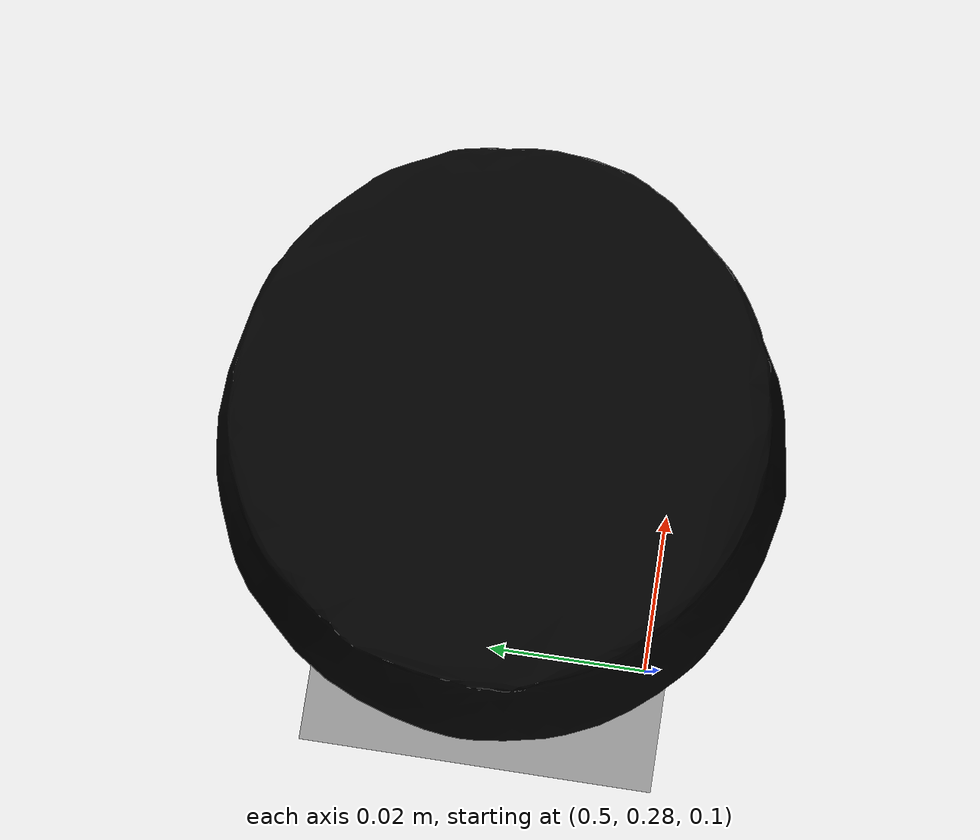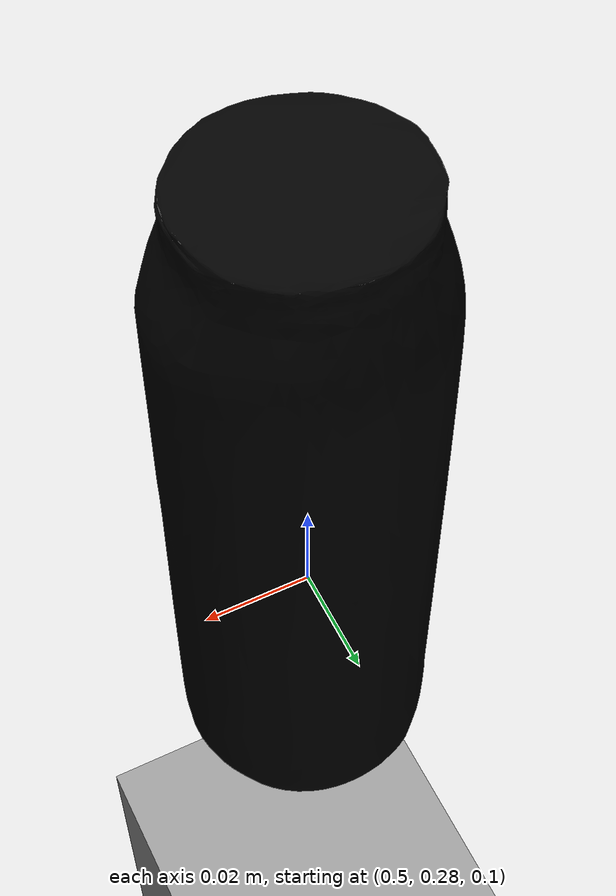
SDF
<?xml version="1.0" ?>
<sdf version="1.4">
  <world name="default">
    <include>
      <uri>model://ground_plane</uri>
    </include>
    <include>
      <uri>model://sun</uri>
    </include>
 <model name='coke_min'>
      <link name='link'>
        <inertial>
          <pose frame=''>0 0 0.06 0 -0 0</pose>
          <mass>0.39</mass>
          <inertia>
            <ixx>0.00055575</ixx>
            <ixy>0</ixy>
            <ixz>0</ixz>
            <iyy>0.00055575</iyy>
            <iyz>0</iyz>
            <izz>0.0001755</izz>
          </inertia>
        </inertial>
        <self_collide>0</self_collide>
        <enable_wind>0</enable_wind>
        <kinematic>0</kinematic>
        <pose frame=''>0 0 0 0 -0 0</pose>
        <gravity>1</gravity>
        <visual name='visual'>
          <pose frame=''>0.003937 0.004724 -0.18 0 -0 0</pose>
          <geometry>
            <mesh>
              <uri>model://coke_can/meshes/coke_can.dae</uri>
              <scale>0.6 0.6 1</scale>
            </mesh>
          </geometry>
          <transparency>0</transparency>
          <cast_shadows>1</cast_shadows>
          <material>
            <shader type='vertex'>
              <normal_map>__default__</normal_map>
            </shader>
            <script>
              <name>ModelPreview_1::link::visual_MATERIAL_</name>
              <uri>__default__</uri>
            </script>
            <ambient>0 0 0 1</ambient>
            <diffuse>0 0 0 1</diffuse>
            <specular>0 0 0 1</specular>
            <emissive>0 0 0 1</emissive>
          </material>
        </visual>
        <collision name='collision'>
          <laser_retro>0</laser_retro>
          <max_contacts>10</max_contacts>
          <pose frame=''>0.003937 0.004724 -0.18 0 -0 0</pose>
          <geometry>
            <mesh>
              <uri>/home/charles/.gazebo/models/coke_can/meshes/coke_can.dae</uri>
              <scale>0.6 0.6 1</scale>
            </mesh>
          </geometry>
          <surface>
            <friction>
              <ode>
                <mu>1</mu>
                <mu2>1</mu2>
                <fdir1>0 0 0</fdir1>
                <slip1>0</slip1>
                <slip2>0</slip2>
              </ode>
              <torsional>
                <coefficient>1</coefficient>
                <patch_radius>0</patch_radius>
                <surface_radius>0</surface_radius>
                <use_patch_radius>1</use_patch_radius>
                <ode>
                  <slip>0</slip>
                </ode>
              </torsional>
            </friction>
            <bounce>
              <restitution_coefficient>0</restitution_coefficient>
              <threshold>1e+06</threshold>
            </bounce>
            <contact>
              <collide_without_contact>0</collide_without_contact>
              <collide_without_contact_bitmask>1</collide_without_contact_bitmask>
              <collide_bitmask>1</collide_bitmask>
              <ode>
                <soft_cfm>0</soft_cfm>
                <soft_erp>0.2</soft_erp>
                <kp>1e+07</kp>
                <kd>1</kd>
                <max_vel>0.1</max_vel>
                <min_depth>0.001</min_depth>
              </ode>
              <bullet>
                <split_impulse>1</split_impulse>
                <split_impulse_penetration_threshold>-0.01</split_impulse_penetration_threshold>
                <soft_cfm>0</soft_cfm>
                <soft_erp>0.2</soft_erp>
                <kp>1e+07</kp>
                <kd>1</kd>
              </bullet>
            </contact>
          </surface>
        </collision>
      </link>
      <static>0</static>
      <allow_auto_disable>1</allow_auto_disable>
      <pose frame=''>0.509866 0.298982 0.09203 0. -0. 0</pose> <!-- Change the origin position of the can here -->s
    </model>
    <model name='unit_box'>
      <pose frame=''>0.35 0 0 0 -0 0</pose>
      <link name='link'>
        <inertial>
          <mass>1</mass>
          <inertia>
            <ixx>0.166667</ixx>
            <ixy>0</ixy>
            <ixz>0</ixz>
            <iyy>0.166667</iyy>
            <iyz>0</iyz>
            <izz>0.166667</izz>
          </inertia>
        </inertial>
        <collision name='collision'>
          <geometry>
            <box>
              <size>1 1 0.05</size>
            </box>
          </geometry>
          <max_contacts>10</max_contacts>
          <surface>
            <contact>
              <ode/>
            </contact>
            <bounce/>
            <friction>
              <torsional>
                <ode/>
              </torsional>
              <ode/>
            </friction>
          </surface>
        </collision>
        <visual name='visual'>
          <geometry>
            <box>
              <size>1 1 0.075</size>
            </box>
          </geometry>
          <material>
            <script>
              <name>Gazebo/Grey</name>
              <uri>file://media/materials/scripts/gazebo.material</uri>
            </script>
          </material>
        </visual>
        <self_collide>0</self_collide>
        <enable_wind>0</enable_wind>
        <kinematic>0</kinematic>
      </link>
    </model>
  </world>
</sdf>
